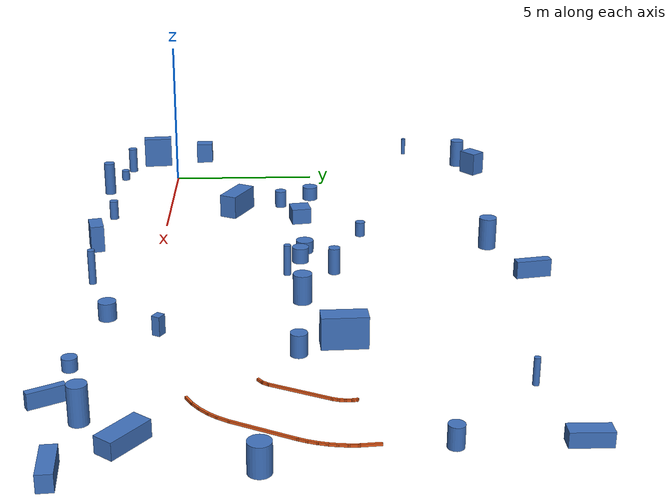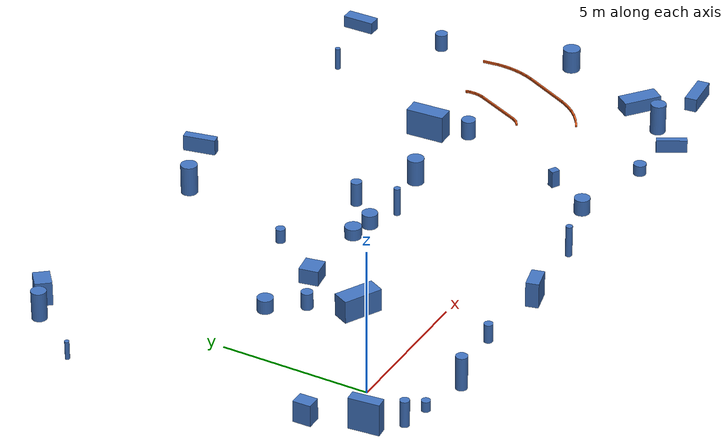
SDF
<sdf version="1.9">
 <world name="default">
  <model name="track_curb">
   <static>true</static>
   <link name="curb_link">
    <collision name="left0_0_0_collision">
     <pose>15.970146 3.323081 0.035000 0.000000 0.000000 0.634511</pose>
     <geometry><box><size>0.236195 0.060000 0.070000</size></box></geometry>
    </collision>
    <visual name="left0_0_0_visual">
     <pose>15.970146 3.323081 0.035000 0.000000 0.000000 0.634511</pose>
     <geometry><box><size>0.236195 0.060000 0.070000</size></box></geometry>
     <material><ambient>0.9 0.35 0.1 1</ambient><diffuse>0.9 0.35 0.1 1</diffuse></material>
    </visual>
    <collision name="left0_1_0_collision">
     <pose>16.093894 3.444819 0.035000 0.000000 0.000000 0.921238</pose>
     <geometry><box><size>0.234584 0.060000 0.070000</size></box></geometry>
    </collision>
    <visual name="left0_1_0_visual">
     <pose>16.093894 3.444819 0.035000 0.000000 0.000000 0.921238</pose>
     <geometry><box><size>0.234584 0.060000 0.070000</size></box></geometry>
     <material><ambient>0.9 0.35 0.1 1</ambient><diffuse>0.9 0.35 0.1 1</diffuse></material>
    </visual>
    <collision name="left0_2_0_collision">
     <pose>16.530513 4.306263 0.035000 0.000000 0.000000 1.119490</pose>
     <geometry><box><size>1.820081 0.060000 0.070000</size></box></geometry>
    </collision>
    <visual name="left0_2_0_visual">
     <pose>16.530513 4.306263 0.035000 0.000000 0.000000 1.119490</pose>
     <geometry><box><size>1.820081 0.060000 0.070000</size></box></geometry>
     <material><ambient>0.9 0.35 0.1 1</ambient><diffuse>0.9 0.35 0.1 1</diffuse></material>
    </visual>
    <collision name="left0_3_0_collision">
     <pose>16.939653 5.172351 0.035000 0.000000 0.000000 1.241788</pose>
     <geometry><box><size>0.216722 0.060000 0.070000</size></box></geometry>
    </collision>
    <visual name="left0_3_0_visual">
     <pose>16.939653 5.172351 0.035000 0.000000 0.000000 1.241788</pose>
     <geometry><box><size>0.216722 0.060000 0.070000</size></box></geometry>
     <material><ambient>0.9 0.35 0.1 1</ambient><diffuse>0.9 0.35 0.1 1</diffuse></material>
    </visual>
    <collision name="left0_4_0_collision">
     <pose>16.978545 5.328295 0.035000 0.000000 0.000000 1.406337</pose>
     <geometry><box><size>0.225809 0.060000 0.070000</size></box></geometry>
    </collision>
    <visual name="left0_4_0_visual">
     <pose>16.978545 5.328295 0.035000 0.000000 0.000000 1.406337</pose>
     <geometry><box><size>0.225809 0.060000 0.070000</size></box></geometry>
     <material><ambient>0.9 0.35 0.1 1</ambient><diffuse>0.9 0.35 0.1 1</diffuse></material>
    </visual>
    <collision name="left0_5_0_collision">
     <pose>16.990731 5.502282 0.035000 0.000000 0.000000 1.585837</pose>
     <geometry><box><size>0.244424 0.060000 0.070000</size></box></geometry>
    </collision>
    <visual name="left0_5_0_visual">
     <pose>16.990731 5.502282 0.035000 0.000000 0.000000 1.585837</pose>
     <geometry><box><size>0.244424 0.060000 0.070000</size></box></geometry>
     <material><ambient>0.9 0.35 0.1 1</ambient><diffuse>0.9 0.35 0.1 1</diffuse></material>
    </visual>
    <collision name="left0_6_0_collision">
     <pose>16.980616 5.647001 0.035000 0.000000 0.000000 1.735485</pose>
     <geometry><box><size>0.166475 0.060000 0.070000</size></box></geometry>
    </collision>
    <visual name="left0_6_0_visual">
     <pose>16.980616 5.647001 0.035000 0.000000 0.000000 1.735485</pose>
     <geometry><box><size>0.166475 0.060000 0.070000</size></box></geometry>
     <material><ambient>0.9 0.35 0.1 1</ambient><diffuse>0.9 0.35 0.1 1</diffuse></material>
    </visual>
    <collision name="left0_7_0_collision">
     <pose>16.966231 5.703283 0.035000 0.000000 0.000000 2.554404</pose>
     <geometry><box><size>0.073592 0.060000 0.070000</size></box></geometry>
    </collision>
    <visual name="left0_7_0_visual">
     <pose>16.966231 5.703283 0.035000 0.000000 0.000000 2.554404</pose>
     <geometry><box><size>0.073592 0.060000 0.070000</size></box></geometry>
     <material><ambient>0.9 0.35 0.1 1</ambient><diffuse>0.9 0.35 0.1 1</diffuse></material>
    </visual>
    <collision name="right0_0_0_collision">
     <pose>16.908648 1.592783 0.035000 0.000000 0.000000 0.514198</pose>
     <geometry><box><size>0.381289 0.060000 0.070000</size></box></geometry>
    </collision>
    <visual name="right0_0_0_visual">
     <pose>16.908648 1.592783 0.035000 0.000000 0.000000 0.514198</pose>
     <geometry><box><size>0.381289 0.060000 0.070000</size></box></geometry>
     <material><ambient>0.9 0.35 0.1 1</ambient><diffuse>0.9 0.35 0.1 1</diffuse></material>
    </visual>
    <collision name="right0_1_0_collision">
     <pose>17.177615 1.767659 0.035000 0.000000 0.000000 0.638742</pose>
     <geometry><box><size>0.381595 0.060000 0.070000</size></box></geometry>
    </collision>
    <visual name="right0_1_0_visual">
     <pose>17.177615 1.767659 0.035000 0.000000 0.000000 0.638742</pose>
     <geometry><box><size>0.381595 0.060000 0.070000</size></box></geometry>
     <material><ambient>0.9 0.35 0.1 1</ambient><diffuse>0.9 0.35 0.1 1</diffuse></material>
    </visual>
    <collision name="right0_2_0_collision">
     <pose>17.423008 1.974789 0.035000 0.000000 0.000000 0.763286</pose>
     <geometry><box><size>0.381901 0.060000 0.070000</size></box></geometry>
    </collision>
    <visual name="right0_2_0_visual">
     <pose>17.423008 1.974789 0.035000 0.000000 0.000000 0.763286</pose>
     <geometry><box><size>0.381901 0.060000 0.070000</size></box></geometry>
     <material><ambient>0.9 0.35 0.1 1</ambient><diffuse>0.9 0.35 0.1 1</diffuse></material>
    </visual>
    <collision name="right0_3_0_collision">
     <pose>17.631516 2.197962 0.035000 0.000000 0.000000 0.881600</pose>
     <geometry><box><size>0.350007 0.060000 0.070000</size></box></geometry>
    </collision>
    <visual name="right0_3_0_visual">
     <pose>17.631516 2.197962 0.035000 0.000000 0.000000 0.881600</pose>
     <geometry><box><size>0.350007 0.060000 0.070000</size></box></geometry>
     <material><ambient>0.9 0.35 0.1 1</ambient><diffuse>0.9 0.35 0.1 1</diffuse></material>
    </visual>
    <collision name="right0_4_0_collision">
     <pose>17.818630 2.459690 0.035000 0.000000 0.000000 1.006148</pose>
     <geometry><box><size>0.414698 0.060000 0.070000</size></box></geometry>
    </collision>
    <visual name="right0_4_0_visual">
     <pose>17.818630 2.459690 0.035000 0.000000 0.000000 1.006148</pose>
     <geometry><box><size>0.414698 0.060000 0.070000</size></box></geometry>
     <material><ambient>0.9 0.35 0.1 1</ambient><diffuse>0.9 0.35 0.1 1</diffuse></material>
    </visual>
    <collision name="right0_5_0_collision">
     <pose>18.328015 3.413927 0.035000 0.000000 0.000000 1.095017</pose>
     <geometry><box><size>1.869843 0.060000 0.070000</size></box></geometry>
    </collision>
    <visual name="right0_5_0_visual">
     <pose>18.328015 3.413927 0.035000 0.000000 0.000000 1.095017</pose>
     <geometry><box><size>1.869843 0.060000 0.070000</size></box></geometry>
     <material><ambient>0.9 0.35 0.1 1</ambient><diffuse>0.9 0.35 0.1 1</diffuse></material>
    </visual>
    <collision name="right0_6_0_collision">
     <pose>18.790626 4.328469 0.035000 0.000000 0.000000 1.158779</pose>
     <geometry><box><size>0.300364 0.060000 0.070000</size></box></geometry>
    </collision>
    <visual name="right0_6_0_visual">
     <pose>18.790626 4.328469 0.035000 0.000000 0.000000 1.158779</pose>
     <geometry><box><size>0.300364 0.060000 0.070000</size></box></geometry>
     <material><ambient>0.9 0.35 0.1 1</ambient><diffuse>0.9 0.35 0.1 1</diffuse></material>
    </visual>
    <collision name="right0_7_0_collision">
     <pose>18.877982 4.552275 0.035000 0.000000 0.000000 1.238518</pose>
     <geometry><box><size>0.300520 0.060000 0.070000</size></box></geometry>
    </collision>
    <visual name="right0_7_0_visual">
     <pose>18.877982 4.552275 0.035000 0.000000 0.000000 1.238518</pose>
     <geometry><box><size>0.300520 0.060000 0.070000</size></box></geometry>
     <material><ambient>0.9 0.35 0.1 1</ambient><diffuse>0.9 0.35 0.1 1</diffuse></material>
    </visual>
    <collision name="right0_8_0_collision">
     <pose>18.947279 4.782479 0.035000 0.000000 0.000000 1.318258</pose>
     <geometry><box><size>0.300677 0.060000 0.070000</size></box></geometry>
    </collision>
    <visual name="right0_8_0_visual">
     <pose>18.947279 4.782479 0.035000 0.000000 0.000000 1.318258</pose>
     <geometry><box><size>0.300677 0.060000 0.070000</size></box></geometry>
     <material><ambient>0.9 0.35 0.1 1</ambient><diffuse>0.9 0.35 0.1 1</diffuse></material>
    </visual>
    <collision name="right0_9_0_collision">
     <pose>18.998051 5.017624 0.035000 0.000000 0.000000 1.397997</pose>
     <geometry><box><size>0.300834 0.060000 0.070000</size></box></geometry>
    </collision>
    <visual name="right0_9_0_visual">
     <pose>18.998051 5.017624 0.035000 0.000000 0.000000 1.397997</pose>
     <geometry><box><size>0.300834 0.060000 0.070000</size></box></geometry>
     <material><ambient>0.9 0.35 0.1 1</ambient><diffuse>0.9 0.35 0.1 1</diffuse></material>
    </visual>
    <collision name="right0_10_0_collision">
     <pose>19.029953 5.256221 0.035000 0.000000 0.000000 1.477737</pose>
     <geometry><box><size>0.300990 0.060000 0.070000</size></box></geometry>
    </collision>
    <visual name="right0_10_0_visual">
     <pose>19.029953 5.256221 0.035000 0.000000 0.000000 1.477737</pose>
     <geometry><box><size>0.300990 0.060000 0.070000</size></box></geometry>
     <material><ambient>0.9 0.35 0.1 1</ambient><diffuse>0.9 0.35 0.1 1</diffuse></material>
    </visual>
    <collision name="right0_11_0_collision">
     <pose>19.042756 5.496757 0.035000 0.000000 0.000000 1.557476</pose>
     <geometry><box><size>0.301147 0.060000 0.070000</size></box></geometry>
    </collision>
    <visual name="right0_11_0_visual">
     <pose>19.042756 5.496757 0.035000 0.000000 0.000000 1.557476</pose>
     <geometry><box><size>0.301147 0.060000 0.070000</size></box></geometry>
     <material><ambient>0.9 0.35 0.1 1</ambient><diffuse>0.9 0.35 0.1 1</diffuse></material>
    </visual>
    <collision name="right0_12_0_collision">
     <pose>19.020485 5.872923 0.035000 0.000000 0.000000 1.663938</pose>
     <geometry><box><size>0.573431 0.060000 0.070000</size></box></geometry>
    </collision>
    <visual name="right0_12_0_visual">
     <pose>19.020485 5.872923 0.035000 0.000000 0.000000 1.663938</pose>
     <geometry><box><size>0.573431 0.060000 0.070000</size></box></geometry>
     <material><ambient>0.9 0.35 0.1 1</ambient><diffuse>0.9 0.35 0.1 1</diffuse></material>
    </visual>
   </link>
  </model>
  <model name="track_feature">
   <static>true</static>
   <link name="feature_link">
    <collision name="feat_box_2_collision">
     <pose>6.893507 -2.075079 0.432119 0.000000 0.000000 0.234095</pose>
     <geometry><box><size>0.784161 0.426067 0.864237</size></box></geometry>
    </collision>
    <visual name="feat_box_2_visual">
     <pose>6.893507 -2.075079 0.432119 0.000000 0.000000 0.234095</pose>
     <geometry><box><size>0.784161 0.426067 0.864237</size></box></geometry>
     <material><ambient>0.25 0.45 0.75 1</ambient><diffuse>0.25 0.45 0.75 1</diffuse></material>
    </visual>
    <collision name="feat_box_4_collision">
     <pose>16.920263 -1.889733 0.225783 0.000000 0.000000 2.068316</pose>
     <geometry><box><size>1.015036 0.210191 0.451566</size></box></geometry>
    </collision>
    <visual name="feat_box_4_visual">
     <pose>16.920263 -1.889733 0.225783 0.000000 0.000000 2.068316</pose>
     <geometry><box><size>1.015036 0.210191 0.451566</size></box></geometry>
     <material><ambient>0.25 0.45 0.75 1</ambient><diffuse>0.25 0.45 0.75 1</diffuse></material>
    </visual>
    <collision name="feat_box_7_collision">
     <pose>19.027106 10.913917 0.205095 0.000000 0.000000 -1.572901</pose>
     <geometry><box><size>1.084053 0.437793 0.410189</size></box></geometry>
    </collision>
    <visual name="feat_box_7_visual">
     <pose>19.027106 10.913917 0.205095 0.000000 0.000000 -1.572901</pose>
     <geometry><box><size>1.084053 0.437793 0.410189</size></box></geometry>
     <material><ambient>0.25 0.45 0.75 1</ambient><diffuse>0.25 0.45 0.75 1</diffuse></material>
    </visual>
    <collision name="feat_box_8_collision">
     <pose>13.180462 0.500408 0.288573 0.000000 0.000000 1.049483</pose>
     <geometry><box><size>0.250118 0.284658 0.577145</size></box></geometry>
    </collision>
    <visual name="feat_box_8_visual">
     <pose>13.180462 0.500408 0.288573 0.000000 0.000000 1.049483</pose>
     <geometry><box><size>0.250118 0.284658 0.577145</size></box></geometry>
     <material><ambient>0.25 0.45 0.75 1</ambient><diffuse>0.25 0.45 0.75 1</diffuse></material>
    </visual>
    <collision name="feat_box_10_collision">
     <pose>4.596318 4.539169 0.260648 0.000000 0.000000 -1.405028</pose>
     <geometry><box><size>0.649376 0.665287 0.521296</size></box></geometry>
    </collision>
    <visual name="feat_box_10_visual">
     <pose>4.596318 4.539169 0.260648 0.000000 0.000000 -1.405028</pose>
     <geometry><box><size>0.649376 0.665287 0.521296</size></box></geometry>
     <material><ambient>0.25 0.45 0.75 1</ambient><diffuse>0.25 0.45 0.75 1</diffuse></material>
    </visual>
    <collision name="feat_box_15_collision">
     <pose>9.478529 11.540616 0.271835 0.000000 0.000000 1.760429</pose>
     <geometry><box><size>1.097475 0.296877 0.543671</size></box></geometry>
    </collision>
    <visual name="feat_box_15_visual">
     <pose>9.478529 11.540616 0.271835 0.000000 0.000000 1.760429</pose>
     <geometry><box><size>1.097475 0.296877 0.543671</size></box></geometry>
     <material><ambient>0.25 0.45 0.75 1</ambient><diffuse>0.25 0.45 0.75 1</diffuse></material>
    </visual>
    <collision name="feat_box_16_collision">
     <pose>20.118092 -1.274449 0.233364 0.000000 0.000000 0.086087</pose>
     <geometry><box><size>1.220117 0.411430 0.466729</size></box></geometry>
    </collision>
    <visual name="feat_box_16_visual">
     <pose>20.118092 -1.274449 0.233364 0.000000 0.000000 0.086087</pose>
     <geometry><box><size>1.220117 0.411430 0.466729</size></box></geometry>
     <material><ambient>0.25 0.45 0.75 1</ambient><diffuse>0.25 0.45 0.75 1</diffuse></material>
    </visual>
    <collision name="feat_box_17_collision">
     <pose>18.837482 0.220410 0.234092 0.000000 0.000000 -0.667305</pose>
     <geometry><box><size>1.301226 0.559441 0.468183</size></box></geometry>
    </collision>
    <visual name="feat_box_17_visual">
     <pose>18.837482 0.220410 0.234092 0.000000 0.000000 -0.667305</pose>
     <geometry><box><size>1.301226 0.559441 0.468183</size></box></geometry>
     <material><ambient>0.25 0.45 0.75 1</ambient><diffuse>0.25 0.45 0.75 1</diffuse></material>
    </visual>
    <collision name="feat_box_22_collision">
     <pose>13.970763 5.545568 0.465767 0.000000 0.000000 -1.526188</pose>
     <geometry><box><size>1.295734 0.558887 0.931534</size></box></geometry>
    </collision>
    <visual name="feat_box_22_visual">
     <pose>13.970763 5.545568 0.465767 0.000000 0.000000 -1.526188</pose>
     <geometry><box><size>1.295734 0.558887 0.931534</size></box></geometry>
     <material><ambient>0.25 0.45 0.75 1</ambient><diffuse>0.25 0.45 0.75 1</diffuse></material>
    </visual>
    <collision name="feat_box_23_collision">
     <pose>3.658291 2.359002 0.386819 0.000000 0.000000 2.662780</pose>
     <geometry><box><size>1.337380 0.588841 0.773637</size></box></geometry>
    </collision>
    <visual name="feat_box_23_visual">
     <pose>3.658291 2.359002 0.386819 0.000000 0.000000 2.662780</pose>
     <geometry><box><size>1.337380 0.588841 0.773637</size></box></geometry>
     <material><ambient>0.25 0.45 0.75 1</ambient><diffuse>0.25 0.45 0.75 1</diffuse></material>
    </visual>
    <collision name="feat_box_27_collision">
     <pose>-1.650008 -0.885950 0.545496 0.000000 0.000000 1.668477</pose>
     <geometry><box><size>1.020176 0.366927 1.090992</size></box></geometry>
    </collision>
    <visual name="feat_box_27_visual">
     <pose>-1.650008 -0.885950 0.545496 0.000000 0.000000 1.668477</pose>
     <geometry><box><size>1.020176 0.366927 1.090992</size></box></geometry>
     <material><ambient>0.25 0.45 0.75 1</ambient><diffuse>0.25 0.45 0.75 1</diffuse></material>
    </visual>
    <collision name="feat_box_30_collision">
     <pose>-2.133260 0.902215 0.367506 0.000000 0.000000 0.016267</pose>
     <geometry><box><size>0.464780 0.596565 0.735012</size></box></geometry>
    </collision>
    <visual name="feat_box_30_visual">
     <pose>-2.133260 0.902215 0.367506 0.000000 0.000000 0.016267</pose>
     <geometry><box><size>0.464780 0.596565 0.735012</size></box></geometry>
     <material><ambient>0.25 0.45 0.75 1</ambient><diffuse>0.25 0.45 0.75 1</diffuse></material>
    </visual>
    <collision name="feat_box_35_collision">
     <pose>-0.467199 11.218057 0.410643 0.000000 0.000000 2.260509</pose>
     <geometry><box><size>0.548164 0.681923 0.821285</size></box></geometry>
    </collision>
    <visual name="feat_box_35_visual">
     <pose>-0.467199 11.218057 0.410643 0.000000 0.000000 2.260509</pose>
     <geometry><box><size>0.548164 0.681923 0.821285</size></box></geometry>
     <material><ambient>0.25 0.45 0.75 1</ambient><diffuse>0.25 0.45 0.75 1</diffuse></material>
    </visual>
    <collision name="feat_cyl_1_collision">
     <pose>4.223443 -1.863348 0.320669 0.000000 0.000000 0.000000</pose>
     <geometry><cylinder><radius>0.146870</radius><length>0.641337</length></cylinder></geometry>
    </collision>
    <visual name="feat_cyl_1_visual">
     <pose>4.223443 -1.863348 0.320669 0.000000 0.000000 0.000000</pose>
     <geometry><cylinder><radius>0.146870</radius><length>0.641337</length></cylinder></geometry>
     <material><ambient>0.25 0.45 0.75 1</ambient><diffuse>0.25 0.45 0.75 1</diffuse></material>
    </visual>
    <collision name="feat_cyl_3_collision">
     <pose>2.383929 4.931580 0.233914 0.000000 0.000000 0.000000</pose>
     <geometry><cylinder><radius>0.263021</radius><length>0.467828</length></cylinder></geometry>
    </collision>
    <visual name="feat_cyl_3_visual">
     <pose>2.383929 4.931580 0.233914 0.000000 0.000000 0.000000</pose>
     <geometry><cylinder><radius>0.263021</radius><length>0.467828</length></cylinder></geometry>
     <material><ambient>0.25 0.45 0.75 1</ambient><diffuse>0.25 0.45 0.75 1</diffuse></material>
    </visual>
    <collision name="feat_cyl_5_collision">
     <pose>19.104657 7.824802 0.302177 0.000000 0.000000 0.000000</pose>
     <geometry><cylinder><radius>0.210776</radius><length>0.604354</length></cylinder></geometry>
    </collision>
    <visual name="feat_cyl_5_visual">
     <pose>19.104657 7.824802 0.302177 0.000000 0.000000 0.000000</pose>
     <geometry><cylinder><radius>0.210776</radius><length>0.604354</length></cylinder></geometry>
     <material><ambient>0.25 0.45 0.75 1</ambient><diffuse>0.25 0.45 0.75 1</diffuse></material>
    </visual>
    <collision name="feat_cyl_6_collision">
     <pose>9.107483 5.501725 0.417309 0.000000 0.000000 0.000000</pose>
     <geometry><cylinder><radius>0.183211</radius><length>0.834617</length></cylinder></geometry>
    </collision>
    <visual name="feat_cyl_6_visual">
     <pose>9.107483 5.501725 0.417309 0.000000 0.000000 0.000000</pose>
     <geometry><cylinder><radius>0.183211</radius><length>0.834617</length></cylinder></geometry>
     <material><ambient>0.25 0.45 0.75 1</ambient><diffuse>0.25 0.45 0.75 1</diffuse></material>
    </visual>
    <collision name="feat_cyl_9_collision">
     <pose>20.036438 3.360670 0.398969 0.000000 0.000000 0.000000</pose>
     <geometry><cylinder><radius>0.293115</radius><length>0.797938</length></cylinder></geometry>
    </collision>
    <visual name="feat_cyl_9_visual">
     <pose>20.036438 3.360670 0.398969 0.000000 0.000000 0.000000</pose>
     <geometry><cylinder><radius>0.293115</radius><length>0.797938</length></cylinder></geometry>
     <material><ambient>0.25 0.45 0.75 1</ambient><diffuse>0.25 0.45 0.75 1</diffuse></material>
    </visual>
    <collision name="feat_cyl_11_collision">
     <pose>-2.811884 8.826324 0.314941 0.000000 0.000000 0.000000</pose>
     <geometry><cylinder><radius>0.075633</radius><length>0.629882</length></cylinder></geometry>
    </collision>
    <visual name="feat_cyl_11_visual">
     <pose>-2.811884 8.826324 0.314941 0.000000 0.000000 0.000000</pose>
     <geometry><cylinder><radius>0.075633</radius><length>0.629882</length></cylinder></geometry>
     <material><ambient>0.25 0.45 0.75 1</ambient><diffuse>0.25 0.45 0.75 1</diffuse></material>
    </visual>
    <collision name="feat_cyl_12_collision">
     <pose>-0.909044 -1.782525 0.448977 0.000000 0.000000 0.000000</pose>
     <geometry><cylinder><radius>0.154599</radius><length>0.897953</length></cylinder></geometry>
    </collision>
    <visual name="feat_cyl_12_visual">
     <pose>-0.909044 -1.782525 0.448977 0.000000 0.000000 0.000000</pose>
     <geometry><cylinder><radius>0.154599</radius><length>0.897953</length></cylinder></geometry>
     <material><ambient>0.25 0.45 0.75 1</ambient><diffuse>0.25 0.45 0.75 1</diffuse></material>
    </visual>
    <collision name="feat_cyl_13_collision">
     <pose>14.498074 4.321462 0.327709 0.000000 0.000000 0.000000</pose>
     <geometry><cylinder><radius>0.237108</radius><length>0.655418</length></cylinder></geometry>
    </collision>
    <visual name="feat_cyl_13_visual">
     <pose>14.498074 4.321462 0.327709 0.000000 0.000000 0.000000</pose>
     <geometry><cylinder><radius>0.237108</radius><length>0.655418</length></cylinder></geometry>
     <material><ambient>0.25 0.45 0.75 1</ambient><diffuse>0.25 0.45 0.75 1</diffuse></material>
    </visual>
    <collision name="feat_cyl_14_collision">
     <pose>6.010424 6.502096 0.240069 0.000000 0.000000 0.000000</pose>
     <geometry><cylinder><radius>0.158849</radius><length>0.480137</length></cylinder></geometry>
    </collision>
    <visual name="feat_cyl_14_visual">
     <pose>6.010424 6.502096 0.240069 0.000000 0.000000 0.000000</pose>
     <geometry><cylinder><radius>0.158849</radius><length>0.480137</length></cylinder></geometry>
     <material><ambient>0.25 0.45 0.75 1</ambient><diffuse>0.25 0.45 0.75 1</diffuse></material>
    </visual>
    <collision name="feat_cyl_18_collision">
     <pose>3.140112 3.880807 0.289773 0.000000 0.000000 0.000000</pose>
     <geometry><cylinder><radius>0.194393</radius><length>0.579545</length></cylinder></geometry>
    </collision>
    <visual name="feat_cyl_18_visual">
     <pose>3.140112 3.880807 0.289773 0.000000 0.000000 0.000000</pose>
     <geometry><cylinder><radius>0.194393</radius><length>0.579545</length></cylinder></geometry>
     <material><ambient>0.25 0.45 0.75 1</ambient><diffuse>0.25 0.45 0.75 1</diffuse></material>
    </visual>
    <collision name="feat_cyl_19_collision">
     <pose>11.194217 4.484155 0.447290 0.000000 0.000000 0.000000</pose>
     <geometry><cylinder><radius>0.278460</radius><length>0.894581</length></cylinder></geometry>
    </collision>
    <visual name="feat_cyl_19_visual">
     <pose>11.194217 4.484155 0.447290 0.000000 0.000000 0.000000</pose>
     <geometry><cylinder><radius>0.278460</radius><length>0.894581</length></cylinder></geometry>
     <material><ambient>0.25 0.45 0.75 1</ambient><diffuse>0.25 0.45 0.75 1</diffuse></material>
    </visual>
    <collision name="feat_cyl_20_collision">
     <pose>9.709332 -1.808585 0.540024 0.000000 0.000000 0.000000</pose>
     <geometry><cylinder><radius>0.112691</radius><length>1.080048</length></cylinder></geometry>
    </collision>
    <visual name="feat_cyl_20_visual">
     <pose>9.709332 -1.808585 0.540024 0.000000 0.000000 0.000000</pose>
     <geometry><cylinder><radius>0.112691</radius><length>1.080048</length></cylinder></geometry>
     <material><ambient>0.25 0.45 0.75 1</ambient><diffuse>0.25 0.45 0.75 1</diffuse></material>
    </visual>
    <collision name="feat_cyl_21_collision">
     <pose>15.174839 -1.598895 0.185346 0.000000 0.000000 0.000000</pose>
     <geometry><cylinder><radius>0.211595</radius><length>0.370692</length></cylinder></geometry>
    </collision>
    <visual name="feat_cyl_21_visual">
     <pose>15.174839 -1.598895 0.185346 0.000000 0.000000 0.000000</pose>
     <geometry><cylinder><radius>0.211595</radius><length>0.370692</length></cylinder></geometry>
     <material><ambient>0.25 0.45 0.75 1</ambient><diffuse>0.25 0.45 0.75 1</diffuse></material>
    </visual>
    <collision name="feat_cyl_24_collision">
     <pose>7.136881 10.542836 0.511295 0.000000 0.000000 0.000000</pose>
     <geometry><cylinder><radius>0.277282</radius><length>1.022590</length></cylinder></geometry>
    </collision>
    <visual name="feat_cyl_24_visual">
     <pose>7.136881 10.542836 0.511295 0.000000 0.000000 0.000000</pose>
     <geometry><cylinder><radius>0.277282</radius><length>1.022590</length></cylinder></geometry>
     <material><ambient>0.25 0.45 0.75 1</ambient><diffuse>0.25 0.45 0.75 1</diffuse></material>
    </visual>
    <collision name="feat_cyl_25_collision">
     <pose>0.077756 -1.961062 0.176676 0.000000 0.000000 0.000000</pose>
     <geometry><cylinder><radius>0.145638</radius><length>0.353352</length></cylinder></geometry>
    </collision>
    <visual name="feat_cyl_25_visual">
     <pose>0.077756 -1.961062 0.176676 0.000000 0.000000 0.000000</pose>
     <geometry><cylinder><radius>0.145638</radius><length>0.353352</length></cylinder></geometry>
     <material><ambient>0.25 0.45 0.75 1</ambient><diffuse>0.25 0.45 0.75 1</diffuse></material>
    </visual>
    <collision name="feat_cyl_26_collision">
     <pose>8.167130 4.482782 0.245720 0.000000 0.000000 0.000000</pose>
     <geometry><cylinder><radius>0.261555</radius><length>0.491441</length></cylinder></geometry>
    </collision>
    <visual name="feat_cyl_26_visual">
     <pose>8.167130 4.482782 0.245720 0.000000 0.000000 0.000000</pose>
     <geometry><cylinder><radius>0.261555</radius><length>0.491441</length></cylinder></geometry>
     <material><ambient>0.25 0.45 0.75 1</ambient><diffuse>0.25 0.45 0.75 1</diffuse></material>
    </visual>
    <collision name="feat_cyl_28_collision">
     <pose>9.198717 4.060944 0.487114 0.000000 0.000000 0.000000</pose>
     <geometry><cylinder><radius>0.111276</radius><length>0.974229</length></cylinder></geometry>
    </collision>
    <visual name="feat_cyl_28_visual">
     <pose>9.198717 4.060944 0.487114 0.000000 0.000000 0.000000</pose>
     <geometry><cylinder><radius>0.111276</radius><length>0.974229</length></cylinder></geometry>
     <material><ambient>0.25 0.45 0.75 1</ambient><diffuse>0.25 0.45 0.75 1</diffuse></material>
    </visual>
    <collision name="feat_cyl_29_collision">
     <pose>-1.357089 10.770163 0.497809 0.000000 0.000000 0.000000</pose>
     <geometry><cylinder><radius>0.248260</radius><length>0.995617</length></cylinder></geometry>
    </collision>
    <visual name="feat_cyl_29_visual">
     <pose>-1.357089 10.770163 0.497809 0.000000 0.000000 0.000000</pose>
     <geometry><cylinder><radius>0.248260</radius><length>0.995617</length></cylinder></geometry>
     <material><ambient>0.25 0.45 0.75 1</ambient><diffuse>0.25 0.45 0.75 1</diffuse></material>
    </visual>
    <collision name="feat_cyl_31_collision">
     <pose>17.825074 -0.949603 0.521569 0.000000 0.000000 0.000000</pose>
     <geometry><cylinder><radius>0.259058</radius><length>1.043137</length></cylinder></geometry>
    </collision>
    <visual name="feat_cyl_31_visual">
     <pose>17.825074 -0.949603 0.521569 0.000000 0.000000 0.000000</pose>
     <geometry><cylinder><radius>0.259058</radius><length>1.043137</length></cylinder></geometry>
     <material><ambient>0.25 0.45 0.75 1</ambient><diffuse>0.25 0.45 0.75 1</diffuse></material>
    </visual>
    <collision name="feat_cyl_32_collision">
     <pose>1.616559 -2.333221 0.577090 0.000000 0.000000 0.000000</pose>
     <geometry><cylinder><radius>0.191269</radius><length>1.154180</length></cylinder></geometry>
    </collision>
    <visual name="feat_cyl_32_visual">
     <pose>1.616559 -2.333221 0.577090 0.000000 0.000000 0.000000</pose>
     <geometry><cylinder><radius>0.191269</radius><length>1.154180</length></cylinder></geometry>
     <material><ambient>0.25 0.45 0.75 1</ambient><diffuse>0.25 0.45 0.75 1</diffuse></material>
    </visual>
    <collision name="feat_cyl_33_collision">
     <pose>12.170189 -1.028893 0.270507 0.000000 0.000000 0.000000</pose>
     <geometry><cylinder><radius>0.261611</radius><length>0.541013</length></cylinder></geometry>
    </collision>
    <visual name="feat_cyl_33_visual">
     <pose>12.170189 -1.028893 0.270507 0.000000 0.000000 0.000000</pose>
     <geometry><cylinder><radius>0.261611</radius><length>0.541013</length></cylinder></geometry>
     <material><ambient>0.25 0.45 0.75 1</ambient><diffuse>0.25 0.45 0.75 1</diffuse></material>
    </visual>
    <collision name="feat_cyl_34_collision">
     <pose>7.363234 4.634075 0.195423 0.000000 0.000000 0.000000</pose>
     <geometry><cylinder><radius>0.278139</radius><length>0.390846</length></cylinder></geometry>
    </collision>
    <visual name="feat_cyl_34_visual">
     <pose>7.363234 4.634075 0.195423 0.000000 0.000000 0.000000</pose>
     <geometry><cylinder><radius>0.278139</radius><length>0.390846</length></cylinder></geometry>
     <material><ambient>0.25 0.45 0.75 1</ambient><diffuse>0.25 0.45 0.75 1</diffuse></material>
    </visual>
    <collision name="feat_cyl_36_collision">
     <pose>16.262033 10.248789 0.385588 0.000000 0.000000 0.000000</pose>
     <geometry><cylinder><radius>0.088064</radius><length>0.771176</length></cylinder></geometry>
    </collision>
    <visual name="feat_cyl_36_visual">
     <pose>16.262033 10.248789 0.385588 0.000000 0.000000 0.000000</pose>
     <geometry><cylinder><radius>0.088064</radius><length>0.771176</length></cylinder></geometry>
     <material><ambient>0.25 0.45 0.75 1</ambient><diffuse>0.25 0.45 0.75 1</diffuse></material>
    </visual>
   </link>
  </model>
 </world>
</sdf>
